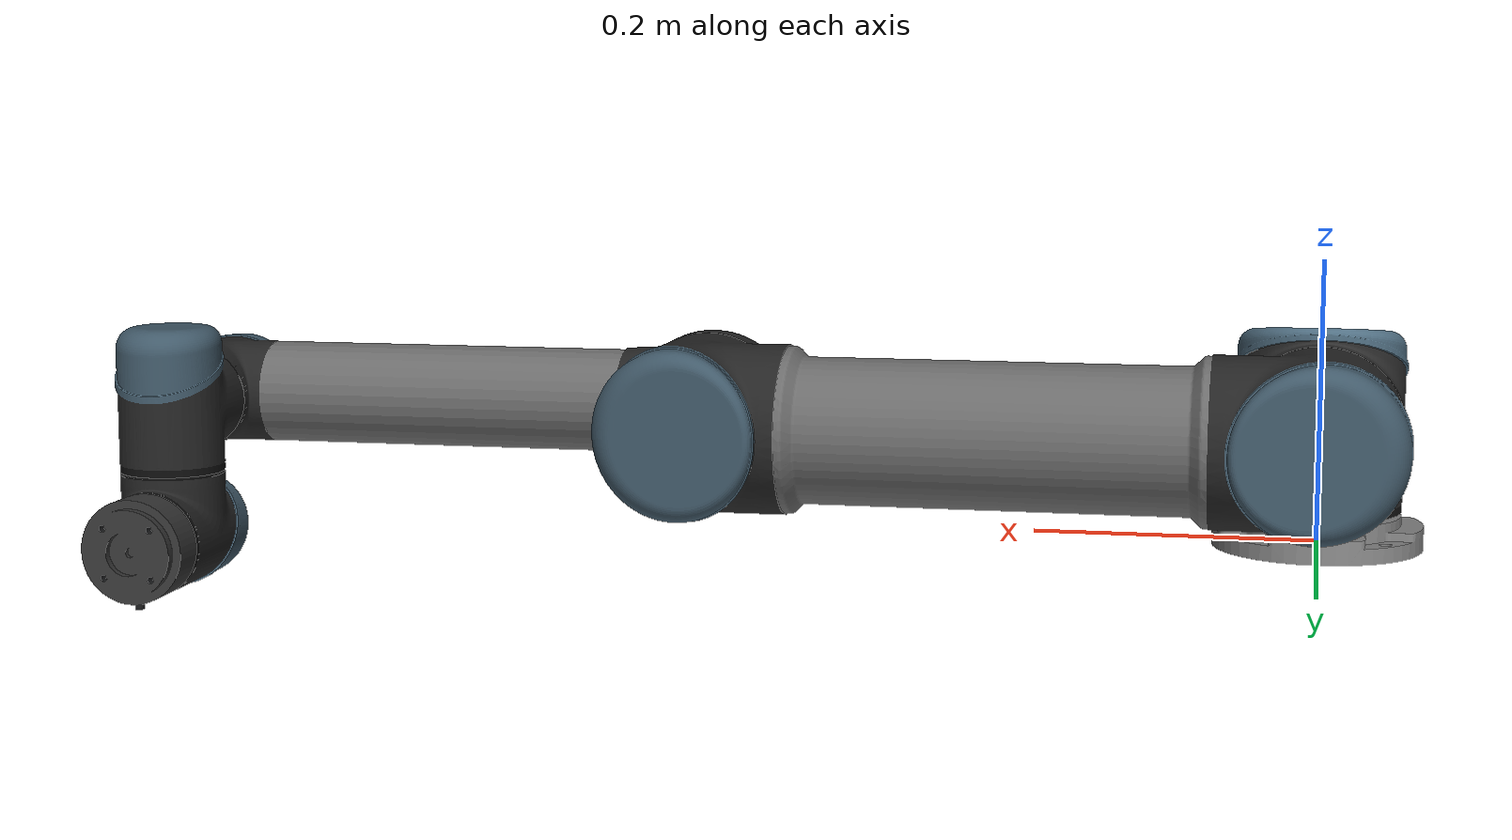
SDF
<?xml version="1.0" encoding="utf-8"?>
<sdf version="1.6">
  <model name="ur5">
    <link name="base_link">
      <pose frame="">0 0 0 0 -0 0</pose>
      <inertial>
        <pose frame="">0 0 0 0 -0 0</pose>
        <mass>4</mass>
        <inertia>
          <ixx>0.00443333</ixx>
          <ixy>0</ixy>
          <ixz>0</ixz>
          <iyy>0.00443333</iyy>
          <iyz>0</iyz>
          <izz>0.0072</izz>
        </inertia>
      </inertial>
      <collision name="base_link_collision">
        <pose frame="">0 0 0 0 -0 0</pose>
        <geometry>
          <mesh>
            <scale>1 1 1</scale>
            <uri>model://ur_description/meshes/ur5/collision/base.stl</uri>
          </mesh>
        </geometry>
      </collision>
      <visual name="base_link_visual">
        <pose frame="">0 0 0 0 -0 0</pose>
        <geometry>
          <mesh>
            <scale>1 1 1</scale>
            <uri>model://ur_description/meshes/ur5/visual/base.dae</uri>
          </mesh>
        </geometry>
      </visual>
    </link>
    <link name="shoulder_link">
      <pose frame="">0 0 0.089159 0 -0 0</pose>
      <inertial>
        <pose frame="">0 0 0 0 -0 0</pose>
        <mass>3.7</mass>
        <inertia>
          <ixx>0.0102675</ixx>
          <ixy>0</ixy>
          <ixz>0</ixz>
          <iyy>0.0102675</iyy>
          <iyz>0</iyz>
          <izz>0.00666</izz>
        </inertia>
      </inertial>
      <collision name="shoulder_link_collision">
        <pose frame="">0 0 0 0 -0 0</pose>
        <geometry>
          <mesh>
            <scale>1 1 1</scale>
            <uri>model://ur_description/meshes/ur5/collision/shoulder.stl</uri>
          </mesh>
        </geometry>
      </collision>
      <visual name="shoulder_link_visual">
        <pose frame="">0 0 0 0 -0 0</pose>
        <geometry>
          <mesh>
            <scale>1 1 1</scale>
            <uri>model://ur_description/meshes/ur5/visual/shoulder.dae</uri>
          </mesh>
        </geometry>
      </visual>
    </link>
    <joint name="shoulder_pan_joint" type="revolute">
      <child>shoulder_link</child>
      <parent>base_link</parent>
      <axis>
        <xyz>0 0 1</xyz>
        <limit>
          <lower>-6.28319</lower>
          <upper>6.28319</upper>
          <effort>150</effort>
          <velocity>3.15</velocity>
        </limit>
        <dynamics>
          <damping>0</damping>
          <friction>0</friction>
          <spring_reference>0</spring_reference>
          <spring_stiffness>0</spring_stiffness>
        </dynamics>
        <use_parent_model_frame>1</use_parent_model_frame>
      </axis>
    </joint>
    <link name="upper_arm_link">
      <pose frame="">0 0.13585 0.089159 3.14159 1.57079 3.14159</pose>
      <inertial>
        <pose frame="">0 0 0.28 0 -0 0</pose>
        <mass>8.393</mass>
        <inertia>
          <ixx>0.226891</ixx>
          <ixy>0</ixy>
          <ixz>0</ixz>
          <iyy>0.226891</iyy>
          <iyz>0</iyz>
          <izz>0.0151074</izz>
        </inertia>
      </inertial>
      <collision name="upper_arm_link_collision">
        <pose frame="">0 0 0 0 -0 0</pose>
        <geometry>
          <mesh>
            <scale>1 1 1</scale>
            <uri>model://ur_description/meshes/ur5/collision/upperarm.stl</uri>
          </mesh>
        </geometry>
      </collision>
      <visual name="upper_arm_link_visual">
        <pose frame="">0 0 0 0 -0 0</pose>
        <geometry>
          <mesh>
            <scale>1 1 1</scale>
            <uri>model://ur_description/meshes/ur5/visual/upperarm.dae</uri>
          </mesh>
        </geometry>
      </visual>
    </link>
    <joint name="shoulder_lift_joint" type="revolute">
      <child>upper_arm_link</child>
      <parent>shoulder_link</parent>
      <axis>
        <xyz>0 1 0</xyz>
        <limit>
          <lower>-6.28319</lower>
          <upper>6.28319</upper>
          <effort>150</effort>
          <velocity>3.15</velocity>
        </limit>
        <dynamics>
          <damping>0</damping>
          <friction>0</friction>
          <spring_reference>0</spring_reference>
          <spring_stiffness>0</spring_stiffness>
        </dynamics>
        <use_parent_model_frame>1</use_parent_model_frame>
      </axis>
    </joint>
    <link name="forearm_link">
      <pose frame="">0.425 0.01615 0.089159 3.14159 1.57079 3.14159</pose>
      <inertial>
        <pose frame="">0 0 0.25 0 -0 0</pose>
        <mass>2.275</mass>
        <inertia>
          <ixx>0.0494433</ixx>
          <ixy>0</ixy>
          <ixz>0</ixz>
          <iyy>0.0494433</iyy>
          <iyz>0</iyz>
          <izz>0.004095</izz>
        </inertia>
      </inertial>
      <collision name="forearm_link_collision">
        <pose frame="">0 0 0 0 -0 0</pose>
        <geometry>
          <mesh>
            <scale>1 1 1</scale>
            <uri>model://ur_description/meshes/ur5/collision/forearm.stl</uri>
          </mesh>
        </geometry>
      </collision>
      <visual name="forearm_link_visual">
        <pose frame="">0 0 0 0 -0 0</pose>
        <geometry>
          <mesh>
            <scale>1 1 1</scale>
            <uri>model://ur_description/meshes/ur5/visual/forearm.dae</uri>
          </mesh>
        </geometry>
      </visual>
    </link>
    <joint name="elbow_joint" type="revolute">
      <child>forearm_link</child>
      <parent>upper_arm_link</parent>
      <axis>
        <xyz>0 1 0</xyz>
        <limit>
          <lower>-3.14159</lower>
          <upper>3.14159</upper>
          <effort>150</effort>
          <velocity>3.15</velocity>
        </limit>
        <dynamics>
          <damping>0</damping>
          <friction>0</friction>
          <spring_reference>0</spring_reference>
          <spring_stiffness>0</spring_stiffness>
        </dynamics>
        <use_parent_model_frame>1</use_parent_model_frame>
      </axis>
    </joint>
    <link name="wrist_1_link">
      <pose frame="">0.81725 0.01615 0.089159 3.14159 0 3.14159</pose>
      <inertial>
        <pose frame="">0 0 0 0 -0 0</pose>
        <mass>1.219</mass>
        <inertia>
          <ixx>0.111173</ixx>
          <ixy>0</ixy>
          <ixz>0</ixz>
          <iyy>0.111173</iyy>
          <iyz>0</iyz>
          <izz>0.21942</izz>
        </inertia>
      </inertial>
      <collision name="wrist_1_link_collision">
        <pose frame="">0 0 0 0 -0 0</pose>
        <geometry>
          <mesh>
            <scale>1 1 1</scale>
            <uri>model://ur_description/meshes/ur5/collision/wrist1.stl</uri>
          </mesh>
        </geometry>
      </collision>
      <visual name="wrist_1_link_visual">
        <pose frame="">0 0 0 0 -0 0</pose>
        <geometry>
          <mesh>
            <scale>1 1 1</scale>
            <uri>model://ur_description/meshes/ur5/visual/wrist1.dae</uri>
          </mesh>
        </geometry>
      </visual>
    </link>
    <joint name="wrist_1_joint" type="revolute">
      <child>wrist_1_link</child>
      <parent>forearm_link</parent>
      <axis>
        <xyz>0 1 0</xyz>
        <limit>
          <lower>-6.28319</lower>
          <upper>6.28319</upper>
          <effort>28</effort>
          <velocity>3.2</velocity>
        </limit>
        <dynamics>
          <damping>0</damping>
          <friction>0</friction>
          <spring_reference>0</spring_reference>
          <spring_stiffness>0</spring_stiffness>
        </dynamics>
        <use_parent_model_frame>1</use_parent_model_frame>
      </axis>
    </joint>
    <link name="wrist_2_link">
      <pose frame="">0.81725 0.10915 0.089159 3.14159 0 3.14159</pose>
      <inertial>
        <pose frame="">0 0 0 0 -0 0</pose>
        <mass>1.219</mass>
        <inertia>
          <ixx>0.111173</ixx>
          <ixy>0</ixy>
          <ixz>0</ixz>
          <iyy>0.111173</iyy>
          <iyz>0</iyz>
          <izz>0.21942</izz>
        </inertia>
      </inertial>
      <collision name="wrist_2_link_collision">
        <pose frame="">0 0 0 0 -0 0</pose>
        <geometry>
          <mesh>
            <scale>1 1 1</scale>
            <uri>model://ur_description/meshes/ur5/collision/wrist2.stl</uri>
          </mesh>
        </geometry>
      </collision>
      <visual name="wrist_2_link_visual">
        <pose frame="">0 0 0 0 -0 0</pose>
        <geometry>
          <mesh>
            <scale>1 1 1</scale>
            <uri>model://ur_description/meshes/ur5/visual/wrist2.dae</uri>
          </mesh>
        </geometry>
      </visual>
    </link>
    <joint name="wrist_2_joint" type="revolute">
      <child>wrist_2_link</child>
      <parent>wrist_1_link</parent>
      <axis>
        <xyz>0 0 -1</xyz>
        <limit>
          <lower>-6.28319</lower>
          <upper>6.28319</upper>
          <effort>28</effort>
          <velocity>3.2</velocity>
        </limit>
        <dynamics>
          <damping>0</damping>
          <friction>0</friction>
          <spring_reference>0</spring_reference>
          <spring_stiffness>0</spring_stiffness>
        </dynamics>
        <use_parent_model_frame>1</use_parent_model_frame>
      </axis>
    </joint>
    <link name="wrist_3_link">
      <pose frame="">0.81725 0.10915 -0.005491 3.14159 0 3.14159</pose>
      <inertial>
        <pose frame="">0 0 0 0 -0 0</pose>
        <mass>0.1879</mass>
        <inertia>
          <ixx>0.0171365</ixx>
          <ixy>0</ixy>
          <ixz>0</ixz>
          <iyy>0.0171365</iyy>
          <iyz>0</iyz>
          <izz>0.033822</izz>
        </inertia>
      </inertial>
      <collision name="wrist_3_link_collision">
        <pose frame="">0 0 0 0 -0 0</pose>
        <geometry>
          <mesh>
            <scale>1 1 1</scale>
            <uri>model://ur_description/meshes/ur5/collision/wrist3.stl</uri>
          </mesh>
        </geometry>
      </collision>
      <collision name="wrist_3_link_fixed_joint_lump__ee_link_collision_1">
        <pose frame="">-0 0.0723 0 0 -0 1.5708</pose>
        <geometry>
          <box>
            <size>0.01 0.01 0.01</size>
          </box>
        </geometry>
      </collision>
      <visual name="wrist_3_link_visual">
        <pose frame="">0 0 0 0 -0 0</pose>
        <geometry>
          <mesh>
            <scale>1 1 1</scale>
            <uri>model://ur_description/meshes/ur5/visual/wrist3.dae</uri>
          </mesh>
        </geometry>
      </visual>
    </link>
    <joint name="wrist_3_joint" type="revolute">
      <child>wrist_3_link</child>
      <parent>wrist_2_link</parent>
      <axis>
        <xyz>0 1 0</xyz>
        <limit>
          <lower>-6.28319</lower>
          <upper>6.28319</upper>
          <effort>28</effort>
          <velocity>3.2</velocity>
        </limit>
        <dynamics>
          <damping>0</damping>
          <friction>0</friction>
          <spring_reference>0</spring_reference>
          <spring_stiffness>0</spring_stiffness>
        </dynamics>
        <use_parent_model_frame>1</use_parent_model_frame>
      </axis>
    </joint>
    <static>0</static>
    <plugin name="ros_control" filename="libgazebo_ros_control.so"/>
  </model>
</sdf>
